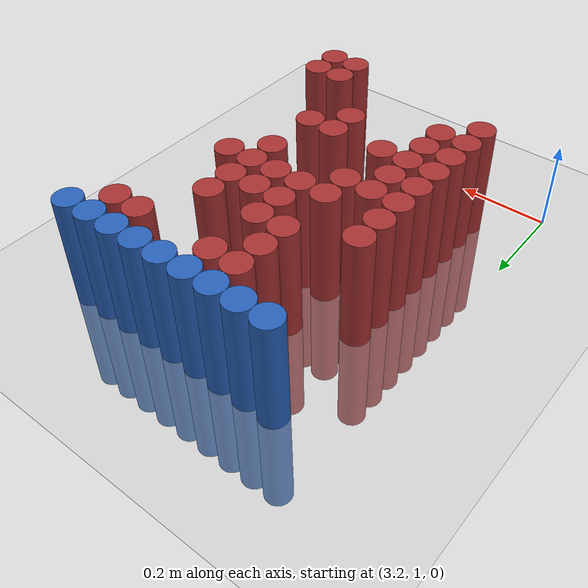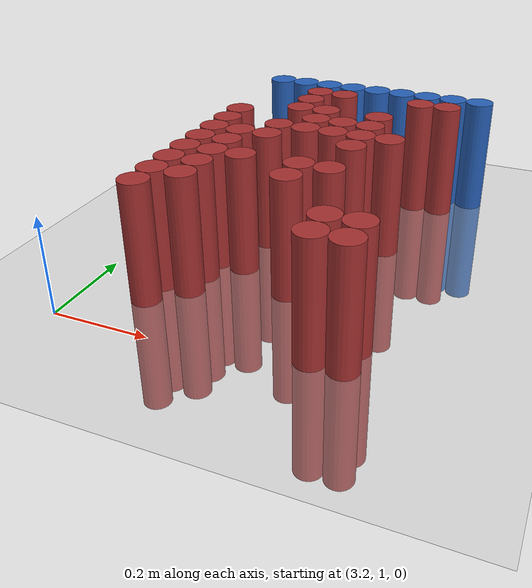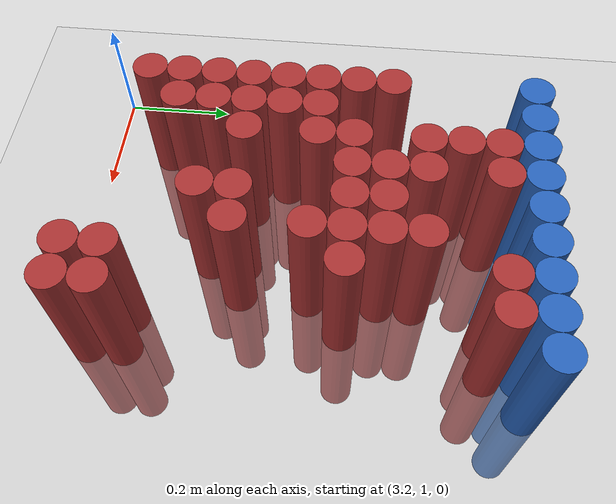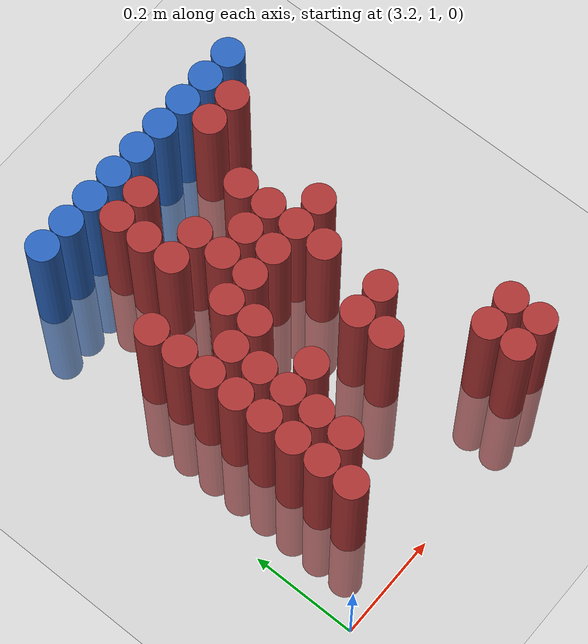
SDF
<sdf version="1.6">
 <world name="default">
  <model name="ground_plane">
   <static>1</static>
   <link name="link">
    <collision name="collision">
     <geometry><plane><normal>0 0 1</normal><size>100 100</size></plane></geometry>
     <surface><friction><ode><mu>100</mu><mu2>50</mu2></ode></friction></surface>
    </collision>
    <visual name="visual">
     <cast_shadows>0</cast_shadows>
     <geometry><plane><normal>0 0 1</normal><size>100 100</size></plane></geometry>
     <material>
      <script><uri>file://media/materials/scripts/gazebo.material</uri><name>Gazebo/Grey</name></script>
     </material>
    </visual>
   </link>
  </model>
  <model name="unit_cylinder_116">
   <static>1</static>
   <pose>3.330000 1.770000 0.000000 0.000000 0.000000 0.000000</pose>
   <link name="link">
    <inertial>
     <mass>1</mass>
     <inertia><ixx>0.145833</ixx><ixy>0</ixy><ixz>0</ixz><iyy>0.145833</iyy><iyz>0</iyz><izz>0.125</izz></inertia>
    </inertial>
    <collision name="collision">
     <geometry><cylinder><radius>0.030000</radius><length>0.5</length></cylinder></geometry>
    </collision>
    <visual name="visual">
     <geometry><cylinder><radius>0.030000</radius><length>0.5</length></cylinder></geometry>
     <material>
      <ambient>0.152000 0.379000 0.720000 1</ambient>
      <diffuse>0.152000 0.379000 0.720000 1</diffuse>
     </material>
     <material>
      <script><name>Gazebo/Grey</name><uri>file://media/materials/scripts/gazebo.material</uri></script>
     </material>
    </visual>
   </link>
  </model>
  <model name="unit_cylinder_117">
   <static>1</static>
   <pose>3.390000 1.770000 0.000000 0.000000 0.000000 0.000000</pose>
   <link name="link">
    <inertial>
     <mass>1</mass>
     <inertia><ixx>0.145833</ixx><ixy>0</ixy><ixz>0</ixz><iyy>0.145833</iyy><iyz>0</iyz><izz>0.125</izz></inertia>
    </inertial>
    <collision name="collision">
     <geometry><cylinder><radius>0.030000</radius><length>0.5</length></cylinder></geometry>
    </collision>
    <visual name="visual">
     <geometry><cylinder><radius>0.030000</radius><length>0.5</length></cylinder></geometry>
     <material>
      <ambient>0.152000 0.379000 0.720000 1</ambient>
      <diffuse>0.152000 0.379000 0.720000 1</diffuse>
     </material>
     <material>
      <script><name>Gazebo/Grey</name><uri>file://media/materials/scripts/gazebo.material</uri></script>
     </material>
    </visual>
   </link>
  </model>
  <model name="unit_cylinder_118">
   <static>1</static>
   <pose>3.450000 1.770000 0.000000 0.000000 0.000000 0.000000</pose>
   <link name="link">
    <inertial>
     <mass>1</mass>
     <inertia><ixx>0.145833</ixx><ixy>0</ixy><ixz>0</ixz><iyy>0.145833</iyy><iyz>0</iyz><izz>0.125</izz></inertia>
    </inertial>
    <collision name="collision">
     <geometry><cylinder><radius>0.030000</radius><length>0.5</length></cylinder></geometry>
    </collision>
    <visual name="visual">
     <geometry><cylinder><radius>0.030000</radius><length>0.5</length></cylinder></geometry>
     <material>
      <ambient>0.152000 0.379000 0.720000 1</ambient>
      <diffuse>0.152000 0.379000 0.720000 1</diffuse>
     </material>
     <material>
      <script><name>Gazebo/Grey</name><uri>file://media/materials/scripts/gazebo.material</uri></script>
     </material>
    </visual>
   </link>
  </model>
  <model name="unit_cylinder_119">
   <static>1</static>
   <pose>3.510000 1.770000 0.000000 0.000000 0.000000 0.000000</pose>
   <link name="link">
    <inertial>
     <mass>1</mass>
     <inertia><ixx>0.145833</ixx><ixy>0</ixy><ixz>0</ixz><iyy>0.145833</iyy><iyz>0</iyz><izz>0.125</izz></inertia>
    </inertial>
    <collision name="collision">
     <geometry><cylinder><radius>0.030000</radius><length>0.5</length></cylinder></geometry>
    </collision>
    <visual name="visual">
     <geometry><cylinder><radius>0.030000</radius><length>0.5</length></cylinder></geometry>
     <material>
      <ambient>0.152000 0.379000 0.720000 1</ambient>
      <diffuse>0.152000 0.379000 0.720000 1</diffuse>
     </material>
     <material>
      <script><name>Gazebo/Grey</name><uri>file://media/materials/scripts/gazebo.material</uri></script>
     </material>
    </visual>
   </link>
  </model>
  <model name="unit_cylinder_120">
   <static>1</static>
   <pose>3.570000 1.770000 0.000000 0.000000 0.000000 0.000000</pose>
   <link name="link">
    <inertial>
     <mass>1</mass>
     <inertia><ixx>0.145833</ixx><ixy>0</ixy><ixz>0</ixz><iyy>0.145833</iyy><iyz>0</iyz><izz>0.125</izz></inertia>
    </inertial>
    <collision name="collision">
     <geometry><cylinder><radius>0.030000</radius><length>0.5</length></cylinder></geometry>
    </collision>
    <visual name="visual">
     <geometry><cylinder><radius>0.030000</radius><length>0.5</length></cylinder></geometry>
     <material>
      <ambient>0.152000 0.379000 0.720000 1</ambient>
      <diffuse>0.152000 0.379000 0.720000 1</diffuse>
     </material>
     <material>
      <script><name>Gazebo/Grey</name><uri>file://media/materials/scripts/gazebo.material</uri></script>
     </material>
    </visual>
   </link>
  </model>
  <model name="unit_cylinder_121">
   <static>1</static>
   <pose>3.630000 1.770000 0.000000 0.000000 0.000000 0.000000</pose>
   <link name="link">
    <inertial>
     <mass>1</mass>
     <inertia><ixx>0.145833</ixx><ixy>0</ixy><ixz>0</ixz><iyy>0.145833</iyy><iyz>0</iyz><izz>0.125</izz></inertia>
    </inertial>
    <collision name="collision">
     <geometry><cylinder><radius>0.030000</radius><length>0.5</length></cylinder></geometry>
    </collision>
    <visual name="visual">
     <geometry><cylinder><radius>0.030000</radius><length>0.5</length></cylinder></geometry>
     <material>
      <ambient>0.152000 0.379000 0.720000 1</ambient>
      <diffuse>0.152000 0.379000 0.720000 1</diffuse>
     </material>
     <material>
      <script><name>Gazebo/Grey</name><uri>file://media/materials/scripts/gazebo.material</uri></script>
     </material>
    </visual>
   </link>
  </model>
  <model name="unit_cylinder_122">
   <static>1</static>
   <pose>3.690000 1.770000 0.000000 0.000000 0.000000 0.000000</pose>
   <link name="link">
    <inertial>
     <mass>1</mass>
     <inertia><ixx>0.145833</ixx><ixy>0</ixy><ixz>0</ixz><iyy>0.145833</iyy><iyz>0</iyz><izz>0.125</izz></inertia>
    </inertial>
    <collision name="collision">
     <geometry><cylinder><radius>0.030000</radius><length>0.5</length></cylinder></geometry>
    </collision>
    <visual name="visual">
     <geometry><cylinder><radius>0.030000</radius><length>0.5</length></cylinder></geometry>
     <material>
      <ambient>0.152000 0.379000 0.720000 1</ambient>
      <diffuse>0.152000 0.379000 0.720000 1</diffuse>
     </material>
     <material>
      <script><name>Gazebo/Grey</name><uri>file://media/materials/scripts/gazebo.material</uri></script>
     </material>
    </visual>
   </link>
  </model>
  <model name="unit_cylinder_123">
   <static>1</static>
   <pose>3.750000 1.770000 0.000000 0.000000 0.000000 0.000000</pose>
   <link name="link">
    <inertial>
     <mass>1</mass>
     <inertia><ixx>0.145833</ixx><ixy>0</ixy><ixz>0</ixz><iyy>0.145833</iyy><iyz>0</iyz><izz>0.125</izz></inertia>
    </inertial>
    <collision name="collision">
     <geometry><cylinder><radius>0.030000</radius><length>0.5</length></cylinder></geometry>
    </collision>
    <visual name="visual">
     <geometry><cylinder><radius>0.030000</radius><length>0.5</length></cylinder></geometry>
     <material>
      <ambient>0.152000 0.379000 0.720000 1</ambient>
      <diffuse>0.152000 0.379000 0.720000 1</diffuse>
     </material>
     <material>
      <script><name>Gazebo/Grey</name><uri>file://media/materials/scripts/gazebo.material</uri></script>
     </material>
    </visual>
   </link>
  </model>
  <model name="unit_cylinder_124">
   <static>1</static>
   <pose>3.810000 1.770000 0.000000 0.000000 0.000000 0.000000</pose>
   <link name="link">
    <inertial>
     <mass>1</mass>
     <inertia><ixx>0.145833</ixx><ixy>0</ixy><ixz>0</ixz><iyy>0.145833</iyy><iyz>0</iyz><izz>0.125</izz></inertia>
    </inertial>
    <collision name="collision">
     <geometry><cylinder><radius>0.030000</radius><length>0.5</length></cylinder></geometry>
    </collision>
    <visual name="visual">
     <geometry><cylinder><radius>0.030000</radius><length>0.5</length></cylinder></geometry>
     <material>
      <ambient>0.152000 0.379000 0.720000 1</ambient>
      <diffuse>0.152000 0.379000 0.720000 1</diffuse>
     </material>
     <material>
      <script><name>Gazebo/Grey</name><uri>file://media/materials/scripts/gazebo.material</uri></script>
     </material>
    </visual>
   </link>
  </model>
  <model name="unit_cylinder_135">
   <static>1</static>
   <pose>3.450000 1.710000 0.000000 0.000000 0.000000 0.000000</pose>
   <link name="link">
    <inertial>
     <mass>1</mass>
     <inertia><ixx>0.145833</ixx><ixy>0</ixy><ixz>0</ixz><iyy>0.145833</iyy><iyz>0</iyz><izz>0.125</izz></inertia>
    </inertial>
    <collision name="collision">
     <geometry><cylinder><radius>0.030000</radius><length>0.5</length></cylinder></geometry>
    </collision>
    <visual name="visual">
     <geometry><cylinder><radius>0.030000</radius><length>0.5</length></cylinder></geometry>
     <material>
      <ambient>0.648000 0.192000 0.192000 1</ambient>
      <diffuse>0.648000 0.192000 0.192000 1</diffuse>
     </material>
     <material>
      <script><name>Gazebo/Grey</name><uri>file://media/materials/scripts/gazebo.material</uri></script>
     </material>
    </visual>
   </link>
  </model>
  <model name="unit_cylinder_136">
   <static>1</static>
   <pose>3.510000 1.710000 0.000000 0.000000 0.000000 0.000000</pose>
   <link name="link">
    <inertial>
     <mass>1</mass>
     <inertia><ixx>0.145833</ixx><ixy>0</ixy><ixz>0</ixz><iyy>0.145833</iyy><iyz>0</iyz><izz>0.125</izz></inertia>
    </inertial>
    <collision name="collision">
     <geometry><cylinder><radius>0.030000</radius><length>0.5</length></cylinder></geometry>
    </collision>
    <visual name="visual">
     <geometry><cylinder><radius>0.030000</radius><length>0.5</length></cylinder></geometry>
     <material>
      <ambient>0.648000 0.192000 0.192000 1</ambient>
      <diffuse>0.648000 0.192000 0.192000 1</diffuse>
     </material>
     <material>
      <script><name>Gazebo/Grey</name><uri>file://media/materials/scripts/gazebo.material</uri></script>
     </material>
    </visual>
   </link>
  </model>
  <model name="unit_cylinder_137">
   <static>1</static>
   <pose>3.690000 1.710000 0.000000 0.000000 0.000000 0.000000</pose>
   <link name="link">
    <inertial>
     <mass>1</mass>
     <inertia><ixx>0.145833</ixx><ixy>0</ixy><ixz>0</ixz><iyy>0.145833</iyy><iyz>0</iyz><izz>0.125</izz></inertia>
    </inertial>
    <collision name="collision">
     <geometry><cylinder><radius>0.030000</radius><length>0.5</length></cylinder></geometry>
    </collision>
    <visual name="visual">
     <geometry><cylinder><radius>0.030000</radius><length>0.5</length></cylinder></geometry>
     <material>
      <ambient>0.648000 0.192000 0.192000 1</ambient>
      <diffuse>0.648000 0.192000 0.192000 1</diffuse>
     </material>
     <material>
      <script><name>Gazebo/Grey</name><uri>file://media/materials/scripts/gazebo.material</uri></script>
     </material>
    </visual>
   </link>
  </model>
  <model name="unit_cylinder_138">
   <static>1</static>
   <pose>3.750000 1.710000 0.000000 0.000000 0.000000 0.000000</pose>
   <link name="link">
    <inertial>
     <mass>1</mass>
     <inertia><ixx>0.145833</ixx><ixy>0</ixy><ixz>0</ixz><iyy>0.145833</iyy><iyz>0</iyz><izz>0.125</izz></inertia>
    </inertial>
    <collision name="collision">
     <geometry><cylinder><radius>0.030000</radius><length>0.5</length></cylinder></geometry>
    </collision>
    <visual name="visual">
     <geometry><cylinder><radius>0.030000</radius><length>0.5</length></cylinder></geometry>
     <material>
      <ambient>0.648000 0.192000 0.192000 1</ambient>
      <diffuse>0.648000 0.192000 0.192000 1</diffuse>
     </material>
     <material>
      <script><name>Gazebo/Grey</name><uri>file://media/materials/scripts/gazebo.material</uri></script>
     </material>
    </visual>
   </link>
  </model>
  <model name="unit_cylinder_146">
   <static>1</static>
   <pose>3.450000 1.650000 0.000000 0.000000 0.000000 0.000000</pose>
   <link name="link">
    <inertial>
     <mass>1</mass>
     <inertia><ixx>0.145833</ixx><ixy>0</ixy><ixz>0</ixz><iyy>0.145833</iyy><iyz>0</iyz><izz>0.125</izz></inertia>
    </inertial>
    <collision name="collision">
     <geometry><cylinder><radius>0.030000</radius><length>0.5</length></cylinder></geometry>
    </collision>
    <visual name="visual">
     <geometry><cylinder><radius>0.030000</radius><length>0.5</length></cylinder></geometry>
     <material>
      <ambient>0.648000 0.192000 0.192000 1</ambient>
      <diffuse>0.648000 0.192000 0.192000 1</diffuse>
     </material>
     <material>
      <script><name>Gazebo/Grey</name><uri>file://media/materials/scripts/gazebo.material</uri></script>
     </material>
    </visual>
   </link>
  </model>
  <model name="unit_cylinder_158">
   <static>1</static>
   <pose>3.450000 1.590000 0.000000 0.000000 0.000000 0.000000</pose>
   <link name="link">
    <inertial>
     <mass>1</mass>
     <inertia><ixx>0.145833</ixx><ixy>0</ixy><ixz>0</ixz><iyy>0.145833</iyy><iyz>0</iyz><izz>0.125</izz></inertia>
    </inertial>
    <collision name="collision">
     <geometry><cylinder><radius>0.030000</radius><length>0.5</length></cylinder></geometry>
    </collision>
    <visual name="visual">
     <geometry><cylinder><radius>0.030000</radius><length>0.5</length></cylinder></geometry>
     <material>
      <ambient>0.648000 0.192000 0.192000 1</ambient>
      <diffuse>0.648000 0.192000 0.192000 1</diffuse>
     </material>
     <material>
      <script><name>Gazebo/Grey</name><uri>file://media/materials/scripts/gazebo.material</uri></script>
     </material>
    </visual>
   </link>
  </model>
  <model name="unit_cylinder_159">
   <static>1</static>
   <pose>3.510000 1.590000 0.000000 0.000000 0.000000 0.000000</pose>
   <link name="link">
    <inertial>
     <mass>1</mass>
     <inertia><ixx>0.145833</ixx><ixy>0</ixy><ixz>0</ixz><iyy>0.145833</iyy><iyz>0</iyz><izz>0.125</izz></inertia>
    </inertial>
    <collision name="collision">
     <geometry><cylinder><radius>0.030000</radius><length>0.5</length></cylinder></geometry>
    </collision>
    <visual name="visual">
     <geometry><cylinder><radius>0.030000</radius><length>0.5</length></cylinder></geometry>
     <material>
      <ambient>0.648000 0.192000 0.192000 1</ambient>
      <diffuse>0.648000 0.192000 0.192000 1</diffuse>
     </material>
     <material>
      <script><name>Gazebo/Grey</name><uri>file://media/materials/scripts/gazebo.material</uri></script>
     </material>
    </visual>
   </link>
  </model>
  <model name="unit_cylinder_160">
   <static>1</static>
   <pose>3.630000 1.590000 0.000000 0.000000 0.000000 0.000000</pose>
   <link name="link">
    <inertial>
     <mass>1</mass>
     <inertia><ixx>0.145833</ixx><ixy>0</ixy><ixz>0</ixz><iyy>0.145833</iyy><iyz>0</iyz><izz>0.125</izz></inertia>
    </inertial>
    <collision name="collision">
     <geometry><cylinder><radius>0.030000</radius><length>0.5</length></cylinder></geometry>
    </collision>
    <visual name="visual">
     <geometry><cylinder><radius>0.030000</radius><length>0.5</length></cylinder></geometry>
     <material>
      <ambient>0.648000 0.192000 0.192000 1</ambient>
      <diffuse>0.648000 0.192000 0.192000 1</diffuse>
     </material>
     <material>
      <script><name>Gazebo/Grey</name><uri>file://media/materials/scripts/gazebo.material</uri></script>
     </material>
    </visual>
   </link>
  </model>
  <model name="unit_cylinder_171">
   <static>1</static>
   <pose>3.330000 1.530000 0.000000 0.000000 0.000000 0.000000</pose>
   <link name="link">
    <inertial>
     <mass>1</mass>
     <inertia><ixx>0.145833</ixx><ixy>0</ixy><ixz>0</ixz><iyy>0.145833</iyy><iyz>0</iyz><izz>0.125</izz></inertia>
    </inertial>
    <collision name="collision">
     <geometry><cylinder><radius>0.030000</radius><length>0.5</length></cylinder></geometry>
    </collision>
    <visual name="visual">
     <geometry><cylinder><radius>0.030000</radius><length>0.5</length></cylinder></geometry>
     <material>
      <ambient>0.648000 0.192000 0.192000 1</ambient>
      <diffuse>0.648000 0.192000 0.192000 1</diffuse>
     </material>
     <material>
      <script><name>Gazebo/Grey</name><uri>file://media/materials/scripts/gazebo.material</uri></script>
     </material>
    </visual>
   </link>
  </model>
  <model name="unit_cylinder_172">
   <static>1</static>
   <pose>3.510000 1.530000 0.000000 0.000000 0.000000 0.000000</pose>
   <link name="link">
    <inertial>
     <mass>1</mass>
     <inertia><ixx>0.145833</ixx><ixy>0</ixy><ixz>0</ixz><iyy>0.145833</iyy><iyz>0</iyz><izz>0.125</izz></inertia>
    </inertial>
    <collision name="collision">
     <geometry><cylinder><radius>0.030000</radius><length>0.5</length></cylinder></geometry>
    </collision>
    <visual name="visual">
     <geometry><cylinder><radius>0.030000</radius><length>0.5</length></cylinder></geometry>
     <material>
      <ambient>0.648000 0.192000 0.192000 1</ambient>
      <diffuse>0.648000 0.192000 0.192000 1</diffuse>
     </material>
     <material>
      <script><name>Gazebo/Grey</name><uri>file://media/materials/scripts/gazebo.material</uri></script>
     </material>
    </visual>
   </link>
  </model>
  <model name="unit_cylinder_173">
   <static>1</static>
   <pose>3.570000 1.530000 0.000000 0.000000 0.000000 0.000000</pose>
   <link name="link">
    <inertial>
     <mass>1</mass>
     <inertia><ixx>0.145833</ixx><ixy>0</ixy><ixz>0</ixz><iyy>0.145833</iyy><iyz>0</iyz><izz>0.125</izz></inertia>
    </inertial>
    <collision name="collision">
     <geometry><cylinder><radius>0.030000</radius><length>0.5</length></cylinder></geometry>
    </collision>
    <visual name="visual">
     <geometry><cylinder><radius>0.030000</radius><length>0.5</length></cylinder></geometry>
     <material>
      <ambient>0.648000 0.192000 0.192000 1</ambient>
      <diffuse>0.648000 0.192000 0.192000 1</diffuse>
     </material>
     <material>
      <script><name>Gazebo/Grey</name><uri>file://media/materials/scripts/gazebo.material</uri></script>
     </material>
    </visual>
   </link>
  </model>
  <model name="unit_cylinder_174">
   <static>1</static>
   <pose>3.630000 1.530000 0.000000 0.000000 0.000000 0.000000</pose>
   <link name="link">
    <inertial>
     <mass>1</mass>
     <inertia><ixx>0.145833</ixx><ixy>0</ixy><ixz>0</ixz><iyy>0.145833</iyy><iyz>0</iyz><izz>0.125</izz></inertia>
    </inertial>
    <collision name="collision">
     <geometry><cylinder><radius>0.030000</radius><length>0.5</length></cylinder></geometry>
    </collision>
    <visual name="visual">
     <geometry><cylinder><radius>0.030000</radius><length>0.5</length></cylinder></geometry>
     <material>
      <ambient>0.648000 0.192000 0.192000 1</ambient>
      <diffuse>0.648000 0.192000 0.192000 1</diffuse>
     </material>
     <material>
      <script><name>Gazebo/Grey</name><uri>file://media/materials/scripts/gazebo.material</uri></script>
     </material>
    </visual>
   </link>
  </model>
  <model name="unit_cylinder_182">
   <static>1</static>
   <pose>3.330000 1.470000 0.000000 0.000000 0.000000 0.000000</pose>
   <link name="link">
    <inertial>
     <mass>1</mass>
     <inertia><ixx>0.145833</ixx><ixy>0</ixy><ixz>0</ixz><iyy>0.145833</iyy><iyz>0</iyz><izz>0.125</izz></inertia>
    </inertial>
    <collision name="collision">
     <geometry><cylinder><radius>0.030000</radius><length>0.5</length></cylinder></geometry>
    </collision>
    <visual name="visual">
     <geometry><cylinder><radius>0.030000</radius><length>0.5</length></cylinder></geometry>
     <material>
      <ambient>0.648000 0.192000 0.192000 1</ambient>
      <diffuse>0.648000 0.192000 0.192000 1</diffuse>
     </material>
     <material>
      <script><name>Gazebo/Grey</name><uri>file://media/materials/scripts/gazebo.material</uri></script>
     </material>
    </visual>
   </link>
  </model>
  <model name="unit_cylinder_183">
   <static>1</static>
   <pose>3.450000 1.470000 0.000000 0.000000 0.000000 0.000000</pose>
   <link name="link">
    <inertial>
     <mass>1</mass>
     <inertia><ixx>0.145833</ixx><ixy>0</ixy><ixz>0</ixz><iyy>0.145833</iyy><iyz>0</iyz><izz>0.125</izz></inertia>
    </inertial>
    <collision name="collision">
     <geometry><cylinder><radius>0.030000</radius><length>0.5</length></cylinder></geometry>
    </collision>
    <visual name="visual">
     <geometry><cylinder><radius>0.030000</radius><length>0.5</length></cylinder></geometry>
     <material>
      <ambient>0.648000 0.192000 0.192000 1</ambient>
      <diffuse>0.648000 0.192000 0.192000 1</diffuse>
     </material>
     <material>
      <script><name>Gazebo/Grey</name><uri>file://media/materials/scripts/gazebo.material</uri></script>
     </material>
    </visual>
   </link>
  </model>
  <model name="unit_cylinder_184">
   <static>1</static>
   <pose>3.510000 1.470000 0.000000 0.000000 0.000000 0.000000</pose>
   <link name="link">
    <inertial>
     <mass>1</mass>
     <inertia><ixx>0.145833</ixx><ixy>0</ixy><ixz>0</ixz><iyy>0.145833</iyy><iyz>0</iyz><izz>0.125</izz></inertia>
    </inertial>
    <collision name="collision">
     <geometry><cylinder><radius>0.030000</radius><length>0.5</length></cylinder></geometry>
    </collision>
    <visual name="visual">
     <geometry><cylinder><radius>0.030000</radius><length>0.5</length></cylinder></geometry>
     <material>
      <ambient>0.648000 0.192000 0.192000 1</ambient>
      <diffuse>0.648000 0.192000 0.192000 1</diffuse>
     </material>
     <material>
      <script><name>Gazebo/Grey</name><uri>file://media/materials/scripts/gazebo.material</uri></script>
     </material>
    </visual>
   </link>
  </model>
  <model name="unit_cylinder_185">
   <static>1</static>
   <pose>3.570000 1.470000 0.000000 0.000000 0.000000 0.000000</pose>
   <link name="link">
    <inertial>
     <mass>1</mass>
     <inertia><ixx>0.145833</ixx><ixy>0</ixy><ixz>0</ixz><iyy>0.145833</iyy><iyz>0</iyz><izz>0.125</izz></inertia>
    </inertial>
    <collision name="collision">
     <geometry><cylinder><radius>0.030000</radius><length>0.5</length></cylinder></geometry>
    </collision>
    <visual name="visual">
     <geometry><cylinder><radius>0.030000</radius><length>0.5</length></cylinder></geometry>
     <material>
      <ambient>0.648000 0.192000 0.192000 1</ambient>
      <diffuse>0.648000 0.192000 0.192000 1</diffuse>
     </material>
     <material>
      <script><name>Gazebo/Grey</name><uri>file://media/materials/scripts/gazebo.material</uri></script>
     </material>
    </visual>
   </link>
  </model>
  <model name="unit_cylinder_186">
   <static>1</static>
   <pose>3.630000 1.470000 0.000000 0.000000 0.000000 0.000000</pose>
   <link name="link">
    <inertial>
     <mass>1</mass>
     <inertia><ixx>0.145833</ixx><ixy>0</ixy><ixz>0</ixz><iyy>0.145833</iyy><iyz>0</iyz><izz>0.125</izz></inertia>
    </inertial>
    <collision name="collision">
     <geometry><cylinder><radius>0.030000</radius><length>0.5</length></cylinder></geometry>
    </collision>
    <visual name="visual">
     <geometry><cylinder><radius>0.030000</radius><length>0.5</length></cylinder></geometry>
     <material>
      <ambient>0.648000 0.192000 0.192000 1</ambient>
      <diffuse>0.648000 0.192000 0.192000 1</diffuse>
     </material>
     <material>
      <script><name>Gazebo/Grey</name><uri>file://media/materials/scripts/gazebo.material</uri></script>
     </material>
    </visual>
   </link>
  </model>
  <model name="unit_cylinder_187">
   <static>1</static>
   <pose>3.690000 1.470000 0.000000 0.000000 0.000000 0.000000</pose>
   <link name="link">
    <inertial>
     <mass>1</mass>
     <inertia><ixx>0.145833</ixx><ixy>0</ixy><ixz>0</ixz><iyy>0.145833</iyy><iyz>0</iyz><izz>0.125</izz></inertia>
    </inertial>
    <collision name="collision">
     <geometry><cylinder><radius>0.030000</radius><length>0.5</length></cylinder></geometry>
    </collision>
    <visual name="visual">
     <geometry><cylinder><radius>0.030000</radius><length>0.5</length></cylinder></geometry>
     <material>
      <ambient>0.648000 0.192000 0.192000 1</ambient>
      <diffuse>0.648000 0.192000 0.192000 1</diffuse>
     </material>
     <material>
      <script><name>Gazebo/Grey</name><uri>file://media/materials/scripts/gazebo.material</uri></script>
     </material>
    </visual>
   </link>
  </model>
  <model name="unit_cylinder_194">
   <static>1</static>
   <pose>3.330000 1.410000 0.000000 0.000000 0.000000 0.000000</pose>
   <link name="link">
    <inertial>
     <mass>1</mass>
     <inertia><ixx>0.145833</ixx><ixy>0</ixy><ixz>0</ixz><iyy>0.145833</iyy><iyz>0</iyz><izz>0.125</izz></inertia>
    </inertial>
    <collision name="collision">
     <geometry><cylinder><radius>0.030000</radius><length>0.5</length></cylinder></geometry>
    </collision>
    <visual name="visual">
     <geometry><cylinder><radius>0.030000</radius><length>0.5</length></cylinder></geometry>
     <material>
      <ambient>0.648000 0.192000 0.192000 1</ambient>
      <diffuse>0.648000 0.192000 0.192000 1</diffuse>
     </material>
     <material>
      <script><name>Gazebo/Grey</name><uri>file://media/materials/scripts/gazebo.material</uri></script>
     </material>
    </visual>
   </link>
  </model>
  <model name="unit_cylinder_195">
   <static>1</static>
   <pose>3.390000 1.410000 0.000000 0.000000 0.000000 0.000000</pose>
   <link name="link">
    <inertial>
     <mass>1</mass>
     <inertia><ixx>0.145833</ixx><ixy>0</ixy><ixz>0</ixz><iyy>0.145833</iyy><iyz>0</iyz><izz>0.125</izz></inertia>
    </inertial>
    <collision name="collision">
     <geometry><cylinder><radius>0.030000</radius><length>0.5</length></cylinder></geometry>
    </collision>
    <visual name="visual">
     <geometry><cylinder><radius>0.030000</radius><length>0.5</length></cylinder></geometry>
     <material>
      <ambient>0.648000 0.192000 0.192000 1</ambient>
      <diffuse>0.648000 0.192000 0.192000 1</diffuse>
     </material>
     <material>
      <script><name>Gazebo/Grey</name><uri>file://media/materials/scripts/gazebo.material</uri></script>
     </material>
    </visual>
   </link>
  </model>
  <model name="unit_cylinder_196">
   <static>1</static>
   <pose>3.450000 1.410000 0.000000 0.000000 0.000000 0.000000</pose>
   <link name="link">
    <inertial>
     <mass>1</mass>
     <inertia><ixx>0.145833</ixx><ixy>0</ixy><ixz>0</ixz><iyy>0.145833</iyy><iyz>0</iyz><izz>0.125</izz></inertia>
    </inertial>
    <collision name="collision">
     <geometry><cylinder><radius>0.030000</radius><length>0.5</length></cylinder></geometry>
    </collision>
    <visual name="visual">
     <geometry><cylinder><radius>0.030000</radius><length>0.5</length></cylinder></geometry>
     <material>
      <ambient>0.648000 0.192000 0.192000 1</ambient>
      <diffuse>0.648000 0.192000 0.192000 1</diffuse>
     </material>
     <material>
      <script><name>Gazebo/Grey</name><uri>file://media/materials/scripts/gazebo.material</uri></script>
     </material>
    </visual>
   </link>
  </model>
  <model name="unit_cylinder_197">
   <static>1</static>
   <pose>3.630000 1.410000 0.000000 0.000000 0.000000 0.000000</pose>
   <link name="link">
    <inertial>
     <mass>1</mass>
     <inertia><ixx>0.145833</ixx><ixy>0</ixy><ixz>0</ixz><iyy>0.145833</iyy><iyz>0</iyz><izz>0.125</izz></inertia>
    </inertial>
    <collision name="collision">
     <geometry><cylinder><radius>0.030000</radius><length>0.5</length></cylinder></geometry>
    </collision>
    <visual name="visual">
     <geometry><cylinder><radius>0.030000</radius><length>0.5</length></cylinder></geometry>
     <material>
      <ambient>0.648000 0.192000 0.192000 1</ambient>
      <diffuse>0.648000 0.192000 0.192000 1</diffuse>
     </material>
     <material>
      <script><name>Gazebo/Grey</name><uri>file://media/materials/scripts/gazebo.material</uri></script>
     </material>
    </visual>
   </link>
  </model>
  <model name="unit_cylinder_203">
   <static>1</static>
   <pose>3.330000 1.350000 0.000000 0.000000 0.000000 0.000000</pose>
   <link name="link">
    <inertial>
     <mass>1</mass>
     <inertia><ixx>0.145833</ixx><ixy>0</ixy><ixz>0</ixz><iyy>0.145833</iyy><iyz>0</iyz><izz>0.125</izz></inertia>
    </inertial>
    <collision name="collision">
     <geometry><cylinder><radius>0.030000</radius><length>0.5</length></cylinder></geometry>
    </collision>
    <visual name="visual">
     <geometry><cylinder><radius>0.030000</radius><length>0.5</length></cylinder></geometry>
     <material>
      <ambient>0.648000 0.192000 0.192000 1</ambient>
      <diffuse>0.648000 0.192000 0.192000 1</diffuse>
     </material>
     <material>
      <script><name>Gazebo/Grey</name><uri>file://media/materials/scripts/gazebo.material</uri></script>
     </material>
    </visual>
   </link>
  </model>
  <model name="unit_cylinder_204">
   <static>1</static>
   <pose>3.390000 1.350000 0.000000 0.000000 0.000000 0.000000</pose>
   <link name="link">
    <inertial>
     <mass>1</mass>
     <inertia><ixx>0.145833</ixx><ixy>0</ixy><ixz>0</ixz><iyy>0.145833</iyy><iyz>0</iyz><izz>0.125</izz></inertia>
    </inertial>
    <collision name="collision">
     <geometry><cylinder><radius>0.030000</radius><length>0.5</length></cylinder></geometry>
    </collision>
    <visual name="visual">
     <geometry><cylinder><radius>0.030000</radius><length>0.5</length></cylinder></geometry>
     <material>
      <ambient>0.648000 0.192000 0.192000 1</ambient>
      <diffuse>0.648000 0.192000 0.192000 1</diffuse>
     </material>
     <material>
      <script><name>Gazebo/Grey</name><uri>file://media/materials/scripts/gazebo.material</uri></script>
     </material>
    </visual>
   </link>
  </model>
  <model name="unit_cylinder_209">
   <static>1</static>
   <pose>3.330000 1.290000 0.000000 0.000000 0.000000 0.000000</pose>
   <link name="link">
    <inertial>
     <mass>1</mass>
     <inertia><ixx>0.145833</ixx><ixy>0</ixy><ixz>0</ixz><iyy>0.145833</iyy><iyz>0</iyz><izz>0.125</izz></inertia>
    </inertial>
    <collision name="collision">
     <geometry><cylinder><radius>0.030000</radius><length>0.5</length></cylinder></geometry>
    </collision>
    <visual name="visual">
     <geometry><cylinder><radius>0.030000</radius><length>0.5</length></cylinder></geometry>
     <material>
      <ambient>0.648000 0.192000 0.192000 1</ambient>
      <diffuse>0.648000 0.192000 0.192000 1</diffuse>
     </material>
     <material>
      <script><name>Gazebo/Grey</name><uri>file://media/materials/scripts/gazebo.material</uri></script>
     </material>
    </visual>
   </link>
  </model>
  <model name="unit_cylinder_210">
   <static>1</static>
   <pose>3.390000 1.290000 0.000000 0.000000 0.000000 0.000000</pose>
   <link name="link">
    <inertial>
     <mass>1</mass>
     <inertia><ixx>0.145833</ixx><ixy>0</ixy><ixz>0</ixz><iyy>0.145833</iyy><iyz>0</iyz><izz>0.125</izz></inertia>
    </inertial>
    <collision name="collision">
     <geometry><cylinder><radius>0.030000</radius><length>0.5</length></cylinder></geometry>
    </collision>
    <visual name="visual">
     <geometry><cylinder><radius>0.030000</radius><length>0.5</length></cylinder></geometry>
     <material>
      <ambient>0.648000 0.192000 0.192000 1</ambient>
      <diffuse>0.648000 0.192000 0.192000 1</diffuse>
     </material>
     <material>
      <script><name>Gazebo/Grey</name><uri>file://media/materials/scripts/gazebo.material</uri></script>
     </material>
    </visual>
   </link>
  </model>
  <model name="unit_cylinder_211">
   <static>1</static>
   <pose>3.450000 1.290000 0.000000 0.000000 0.000000 0.000000</pose>
   <link name="link">
    <inertial>
     <mass>1</mass>
     <inertia><ixx>0.145833</ixx><ixy>0</ixy><ixz>0</ixz><iyy>0.145833</iyy><iyz>0</iyz><izz>0.125</izz></inertia>
    </inertial>
    <collision name="collision">
     <geometry><cylinder><radius>0.030000</radius><length>0.5</length></cylinder></geometry>
    </collision>
    <visual name="visual">
     <geometry><cylinder><radius>0.030000</radius><length>0.5</length></cylinder></geometry>
     <material>
      <ambient>0.648000 0.192000 0.192000 1</ambient>
      <diffuse>0.648000 0.192000 0.192000 1</diffuse>
     </material>
     <material>
      <script><name>Gazebo/Grey</name><uri>file://media/materials/scripts/gazebo.material</uri></script>
     </material>
    </visual>
   </link>
  </model>
  <model name="unit_cylinder_212">
   <static>1</static>
   <pose>3.570000 1.290000 0.000000 0.000000 0.000000 0.000000</pose>
   <link name="link">
    <inertial>
     <mass>1</mass>
     <inertia><ixx>0.145833</ixx><ixy>0</ixy><ixz>0</ixz><iyy>0.145833</iyy><iyz>0</iyz><izz>0.125</izz></inertia>
    </inertial>
    <collision name="collision">
     <geometry><cylinder><radius>0.030000</radius><length>0.5</length></cylinder></geometry>
    </collision>
    <visual name="visual">
     <geometry><cylinder><radius>0.030000</radius><length>0.5</length></cylinder></geometry>
     <material>
      <ambient>0.648000 0.192000 0.192000 1</ambient>
      <diffuse>0.648000 0.192000 0.192000 1</diffuse>
     </material>
     <material>
      <script><name>Gazebo/Grey</name><uri>file://media/materials/scripts/gazebo.material</uri></script>
     </material>
    </visual>
   </link>
  </model>
  <model name="unit_cylinder_213">
   <static>1</static>
   <pose>3.630000 1.290000 0.000000 0.000000 0.000000 0.000000</pose>
   <link name="link">
    <inertial>
     <mass>1</mass>
     <inertia><ixx>0.145833</ixx><ixy>0</ixy><ixz>0</ixz><iyy>0.145833</iyy><iyz>0</iyz><izz>0.125</izz></inertia>
    </inertial>
    <collision name="collision">
     <geometry><cylinder><radius>0.030000</radius><length>0.5</length></cylinder></geometry>
    </collision>
    <visual name="visual">
     <geometry><cylinder><radius>0.030000</radius><length>0.5</length></cylinder></geometry>
     <material>
      <ambient>0.648000 0.192000 0.192000 1</ambient>
      <diffuse>0.648000 0.192000 0.192000 1</diffuse>
     </material>
     <material>
      <script><name>Gazebo/Grey</name><uri>file://media/materials/scripts/gazebo.material</uri></script>
     </material>
    </visual>
   </link>
  </model>
  <model name="unit_cylinder_218">
   <static>1</static>
   <pose>3.330000 1.230000 0.000000 0.000000 0.000000 0.000000</pose>
   <link name="link">
    <inertial>
     <mass>1</mass>
     <inertia><ixx>0.145833</ixx><ixy>0</ixy><ixz>0</ixz><iyy>0.145833</iyy><iyz>0</iyz><izz>0.125</izz></inertia>
    </inertial>
    <collision name="collision">
     <geometry><cylinder><radius>0.030000</radius><length>0.5</length></cylinder></geometry>
    </collision>
    <visual name="visual">
     <geometry><cylinder><radius>0.030000</radius><length>0.5</length></cylinder></geometry>
     <material>
      <ambient>0.648000 0.192000 0.192000 1</ambient>
      <diffuse>0.648000 0.192000 0.192000 1</diffuse>
     </material>
     <material>
      <script><name>Gazebo/Grey</name><uri>file://media/materials/scripts/gazebo.material</uri></script>
     </material>
    </visual>
   </link>
  </model>
  <model name="unit_cylinder_219">
   <static>1</static>
   <pose>3.390000 1.230000 0.000000 0.000000 0.000000 0.000000</pose>
   <link name="link">
    <inertial>
     <mass>1</mass>
     <inertia><ixx>0.145833</ixx><ixy>0</ixy><ixz>0</ixz><iyy>0.145833</iyy><iyz>0</iyz><izz>0.125</izz></inertia>
    </inertial>
    <collision name="collision">
     <geometry><cylinder><radius>0.030000</radius><length>0.5</length></cylinder></geometry>
    </collision>
    <visual name="visual">
     <geometry><cylinder><radius>0.030000</radius><length>0.5</length></cylinder></geometry>
     <material>
      <ambient>0.648000 0.192000 0.192000 1</ambient>
      <diffuse>0.648000 0.192000 0.192000 1</diffuse>
     </material>
     <material>
      <script><name>Gazebo/Grey</name><uri>file://media/materials/scripts/gazebo.material</uri></script>
     </material>
    </visual>
   </link>
  </model>
  <model name="unit_cylinder_220">
   <static>1</static>
   <pose>3.570000 1.230000 0.000000 0.000000 0.000000 0.000000</pose>
   <link name="link">
    <inertial>
     <mass>1</mass>
     <inertia><ixx>0.145833</ixx><ixy>0</ixy><ixz>0</ixz><iyy>0.145833</iyy><iyz>0</iyz><izz>0.125</izz></inertia>
    </inertial>
    <collision name="collision">
     <geometry><cylinder><radius>0.030000</radius><length>0.5</length></cylinder></geometry>
    </collision>
    <visual name="visual">
     <geometry><cylinder><radius>0.030000</radius><length>0.5</length></cylinder></geometry>
     <material>
      <ambient>0.648000 0.192000 0.192000 1</ambient>
      <diffuse>0.648000 0.192000 0.192000 1</diffuse>
     </material>
     <material>
      <script><name>Gazebo/Grey</name><uri>file://media/materials/scripts/gazebo.material</uri></script>
     </material>
    </visual>
   </link>
  </model>
  <model name="unit_cylinder_225">
   <static>1</static>
   <pose>3.330000 1.170000 0.000000 0.000000 0.000000 0.000000</pose>
   <link name="link">
    <inertial>
     <mass>1</mass>
     <inertia><ixx>0.145833</ixx><ixy>0</ixy><ixz>0</ixz><iyy>0.145833</iyy><iyz>0</iyz><izz>0.125</izz></inertia>
    </inertial>
    <collision name="collision">
     <geometry><cylinder><radius>0.030000</radius><length>0.5</length></cylinder></geometry>
    </collision>
    <visual name="visual">
     <geometry><cylinder><radius>0.030000</radius><length>0.5</length></cylinder></geometry>
     <material>
      <ambient>0.648000 0.192000 0.192000 1</ambient>
      <diffuse>0.648000 0.192000 0.192000 1</diffuse>
     </material>
     <material>
      <script><name>Gazebo/Grey</name><uri>file://media/materials/scripts/gazebo.material</uri></script>
     </material>
    </visual>
   </link>
  </model>
  <model name="unit_cylinder_226">
   <static>1</static>
   <pose>3.390000 1.170000 0.000000 0.000000 0.000000 0.000000</pose>
   <link name="link">
    <inertial>
     <mass>1</mass>
     <inertia><ixx>0.145833</ixx><ixy>0</ixy><ixz>0</ixz><iyy>0.145833</iyy><iyz>0</iyz><izz>0.125</izz></inertia>
    </inertial>
    <collision name="collision">
     <geometry><cylinder><radius>0.030000</radius><length>0.5</length></cylinder></geometry>
    </collision>
    <visual name="visual">
     <geometry><cylinder><radius>0.030000</radius><length>0.5</length></cylinder></geometry>
     <material>
      <ambient>0.648000 0.192000 0.192000 1</ambient>
      <diffuse>0.648000 0.192000 0.192000 1</diffuse>
     </material>
     <material>
      <script><name>Gazebo/Grey</name><uri>file://media/materials/scripts/gazebo.material</uri></script>
     </material>
    </visual>
   </link>
  </model>
  <model name="unit_cylinder_232">
   <static>1</static>
   <pose>3.330000 1.110000 0.000000 0.000000 0.000000 0.000000</pose>
   <link name="link">
    <inertial>
     <mass>1</mass>
     <inertia><ixx>0.145833</ixx><ixy>0</ixy><ixz>0</ixz><iyy>0.145833</iyy><iyz>0</iyz><izz>0.125</izz></inertia>
    </inertial>
    <collision name="collision">
     <geometry><cylinder><radius>0.030000</radius><length>0.5</length></cylinder></geometry>
    </collision>
    <visual name="visual">
     <geometry><cylinder><radius>0.030000</radius><length>0.5</length></cylinder></geometry>
     <material>
      <ambient>0.648000 0.192000 0.192000 1</ambient>
      <diffuse>0.648000 0.192000 0.192000 1</diffuse>
     </material>
     <material>
      <script><name>Gazebo/Grey</name><uri>file://media/materials/scripts/gazebo.material</uri></script>
     </material>
    </visual>
   </link>
  </model>
  <model name="unit_cylinder_233">
   <static>1</static>
   <pose>3.690000 1.110000 0.000000 0.000000 0.000000 0.000000</pose>
   <link name="link">
    <inertial>
     <mass>1</mass>
     <inertia><ixx>0.145833</ixx><ixy>0</ixy><ixz>0</ixz><iyy>0.145833</iyy><iyz>0</iyz><izz>0.125</izz></inertia>
    </inertial>
    <collision name="collision">
     <geometry><cylinder><radius>0.030000</radius><length>0.5</length></cylinder></geometry>
    </collision>
    <visual name="visual">
     <geometry><cylinder><radius>0.030000</radius><length>0.5</length></cylinder></geometry>
     <material>
      <ambient>0.648000 0.192000 0.192000 1</ambient>
      <diffuse>0.648000 0.192000 0.192000 1</diffuse>
     </material>
     <material>
      <script><name>Gazebo/Grey</name><uri>file://media/materials/scripts/gazebo.material</uri></script>
     </material>
    </visual>
   </link>
  </model>
  <model name="unit_cylinder_234">
   <static>1</static>
   <pose>3.750000 1.110000 0.000000 0.000000 0.000000 0.000000</pose>
   <link name="link">
    <inertial>
     <mass>1</mass>
     <inertia><ixx>0.145833</ixx><ixy>0</ixy><ixz>0</ixz><iyy>0.145833</iyy><iyz>0</iyz><izz>0.125</izz></inertia>
    </inertial>
    <collision name="collision">
     <geometry><cylinder><radius>0.030000</radius><length>0.5</length></cylinder></geometry>
    </collision>
    <visual name="visual">
     <geometry><cylinder><radius>0.030000</radius><length>0.5</length></cylinder></geometry>
     <material>
      <ambient>0.648000 0.192000 0.192000 1</ambient>
      <diffuse>0.648000 0.192000 0.192000 1</diffuse>
     </material>
     <material>
      <script><name>Gazebo/Grey</name><uri>file://media/materials/scripts/gazebo.material</uri></script>
     </material>
    </visual>
   </link>
  </model>
  <model name="unit_cylinder_241">
   <static>1</static>
   <pose>3.690000 1.050000 0.000000 0.000000 0.000000 0.000000</pose>
   <link name="link">
    <inertial>
     <mass>1</mass>
     <inertia><ixx>0.145833</ixx><ixy>0</ixy><ixz>0</ixz><iyy>0.145833</iyy><iyz>0</iyz><izz>0.125</izz></inertia>
    </inertial>
    <collision name="collision">
     <geometry><cylinder><radius>0.030000</radius><length>0.5</length></cylinder></geometry>
    </collision>
    <visual name="visual">
     <geometry><cylinder><radius>0.030000</radius><length>0.5</length></cylinder></geometry>
     <material>
      <ambient>0.648000 0.192000 0.192000 1</ambient>
      <diffuse>0.648000 0.192000 0.192000 1</diffuse>
     </material>
     <material>
      <script><name>Gazebo/Grey</name><uri>file://media/materials/scripts/gazebo.material</uri></script>
     </material>
    </visual>
   </link>
  </model>
  <model name="unit_cylinder_242">
   <static>1</static>
   <pose>3.750000 1.050000 0.000000 0.000000 0.000000 0.000000</pose>
   <link name="link">
    <inertial>
     <mass>1</mass>
     <inertia><ixx>0.145833</ixx><ixy>0</ixy><ixz>0</ixz><iyy>0.145833</iyy><iyz>0</iyz><izz>0.125</izz></inertia>
    </inertial>
    <collision name="collision">
     <geometry><cylinder><radius>0.030000</radius><length>0.5</length></cylinder></geometry>
    </collision>
    <visual name="visual">
     <geometry><cylinder><radius>0.030000</radius><length>0.5</length></cylinder></geometry>
     <material>
      <ambient>0.648000 0.192000 0.192000 1</ambient>
      <diffuse>0.648000 0.192000 0.192000 1</diffuse>
     </material>
     <material>
      <script><name>Gazebo/Grey</name><uri>file://media/materials/scripts/gazebo.material</uri></script>
     </material>
    </visual>
   </link>
  </model>
 </world>
</sdf>
